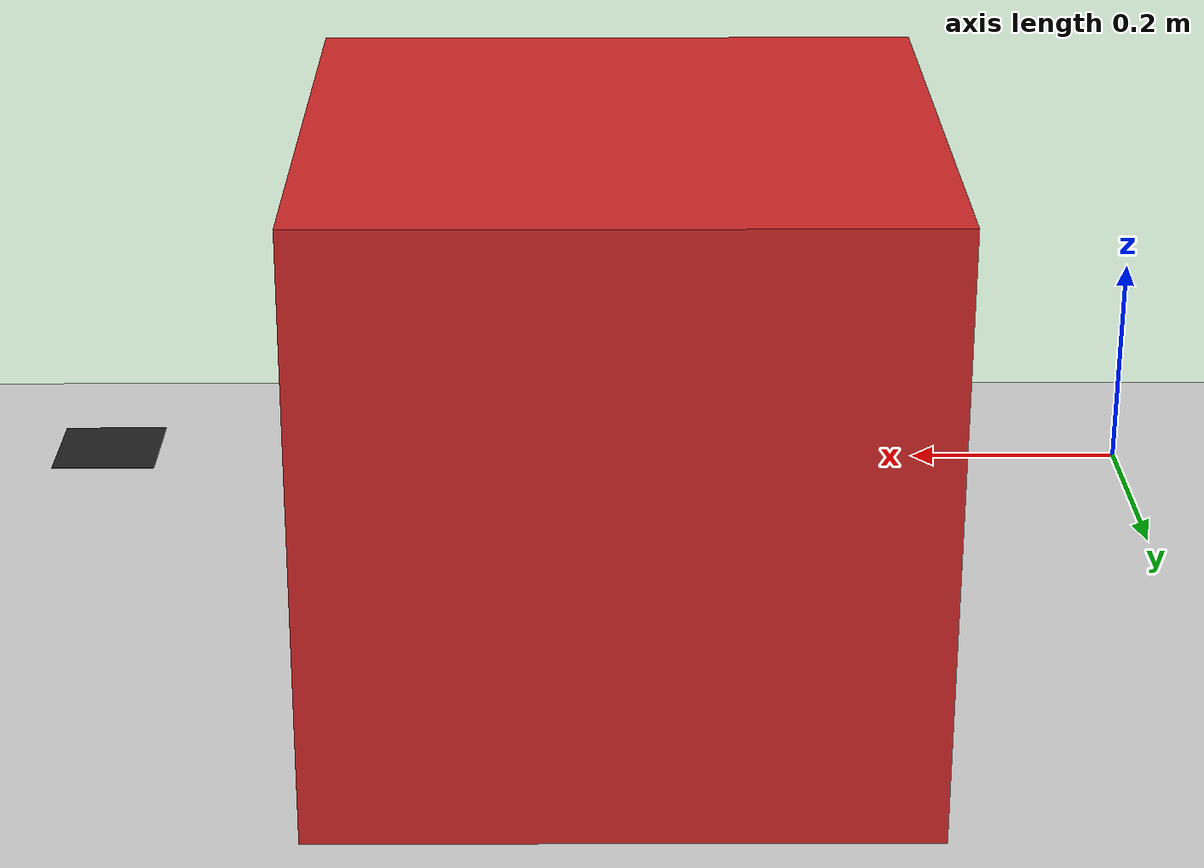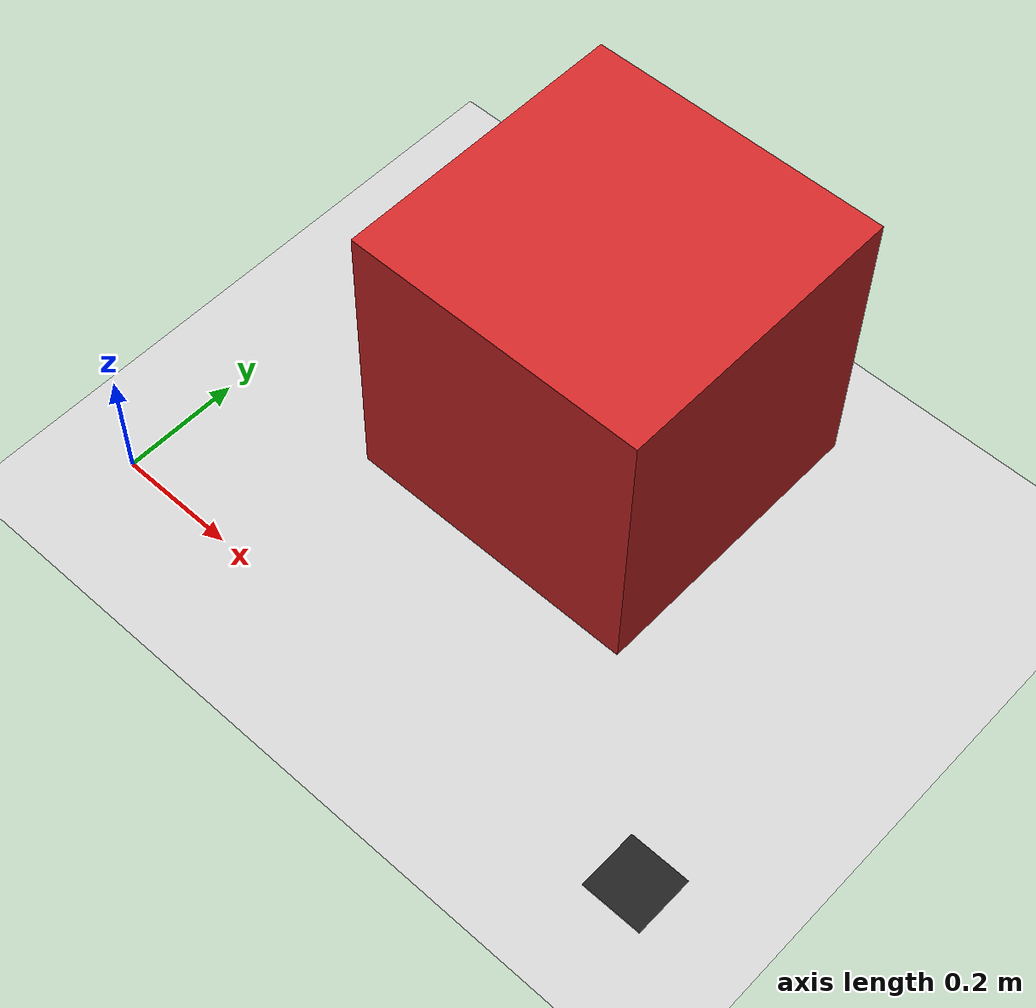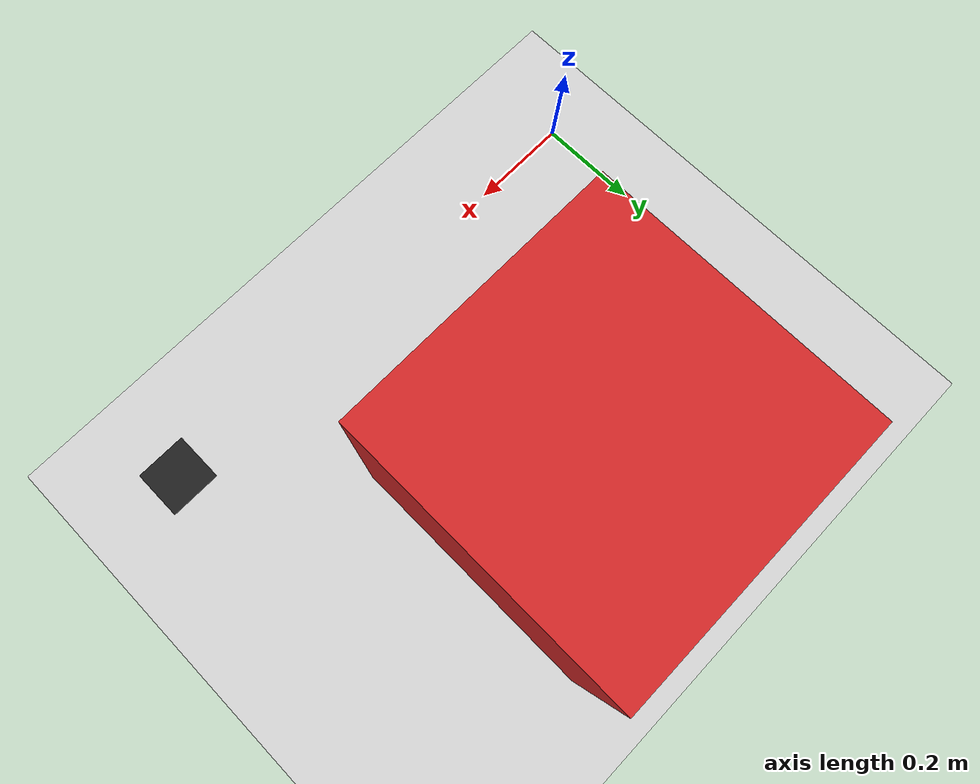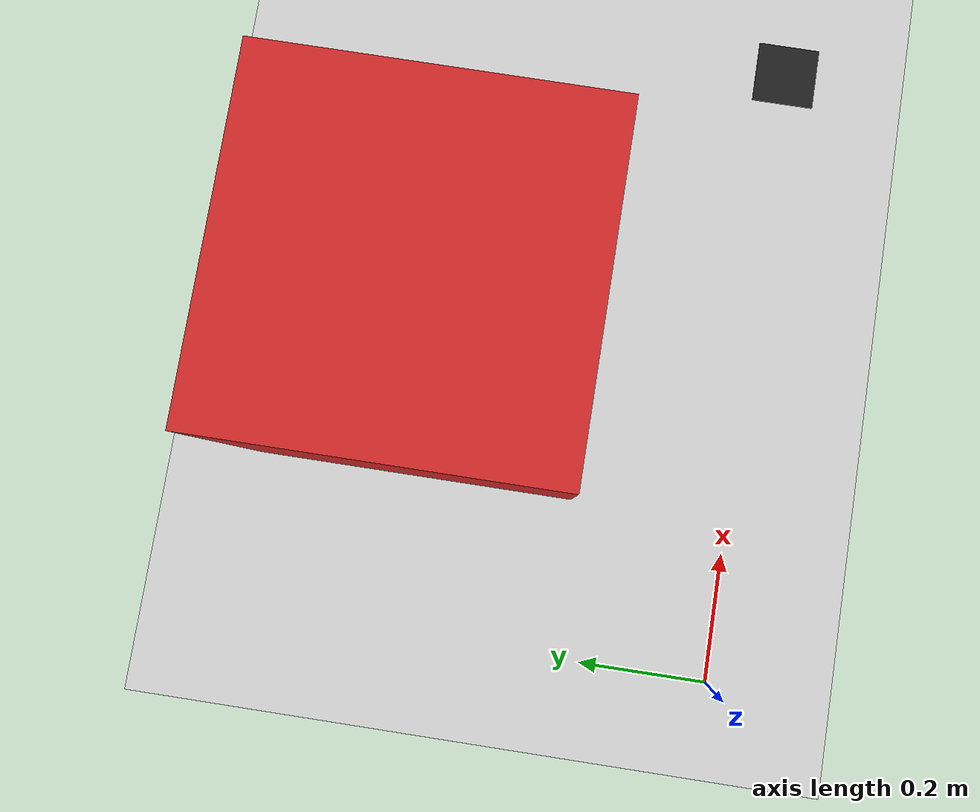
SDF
<?xml version="1.0" ?>
<sdf version="1.6">
  <world name="default">
    <!-- A global light source -->
    <include>
      <uri>model://sun</uri>
    </include>

    <!-- A ground plane -->
    <include>
      <uri>model://ground_plane</uri>
    </include>

    <!-- ArUco marker on the ground -->
    <model name="aruco_marker">
      <static>true</static>
      <link name="link">
        <pose>1.0 0 0.01 0 0 0</pose>
        <visual name="visual">
          <geometry>
            <box>
              <size>0.1 0.1 0.001</size>
            </box>
          </geometry>
          <material>
            <script>
              <uri>file://media/materials/scripts/gazebo.material</uri>
              <name>Gazebo/Black</name>
            </script>
          </material>
        </visual>
        <collision name="collision">
          <geometry>
            <box>
              <size>0.1 0.1 0.001</size>
            </box>
          </geometry>
        </collision>
      </link>
    </model>

    <!-- Simple box for scene complexity -->
    <model name="box1">
      <static>true</static>
      <link name="link">
        <pose>0.5 0.5 0.25 0 0 0</pose>
        <visual name="visual">
          <geometry>
            <box>
              <size>0.5 0.5 0.5</size>
            </box>
          </geometry>
          <material>
            <script>
              <uri>file://media/materials/scripts/gazebo.material</uri>
              <name>Gazebo/Red</name>
            </script>
          </material>
        </visual>
        <collision name="collision">
          <geometry>
            <box>
              <size>0.5 0.5 0.5</size>
            </box>
          </geometry>
        </collision>
      </link>
    </model>

    <!-- Physics settings -->
    <physics type="ode">
      <real_time_update_rate>1000.0</real_time_update_rate>
      <max_step_size>0.001</max_step_size>
      <real_time_factor>1</real_time_factor>
      <ode>
        <solver>
          <type>quick</type>
          <iters>150</iters>
          <precon_iters>0</precon_iters>
          <sor>1.400000</sor>
          <use_dynamic_moi_rescaling>1</use_dynamic_moi_rescaling>
        </solver>
        <constraints>
          <cfm>0.00001</cfm>
          <erp>0.2</erp>
          <contact_max_correcting_vel>2000.000000</contact_max_correcting_vel>
          <contact_surface_layer>0.01000</contact_surface_layer>
        </constraints>
      </ode>
    </physics>
  </world>
</sdf>
